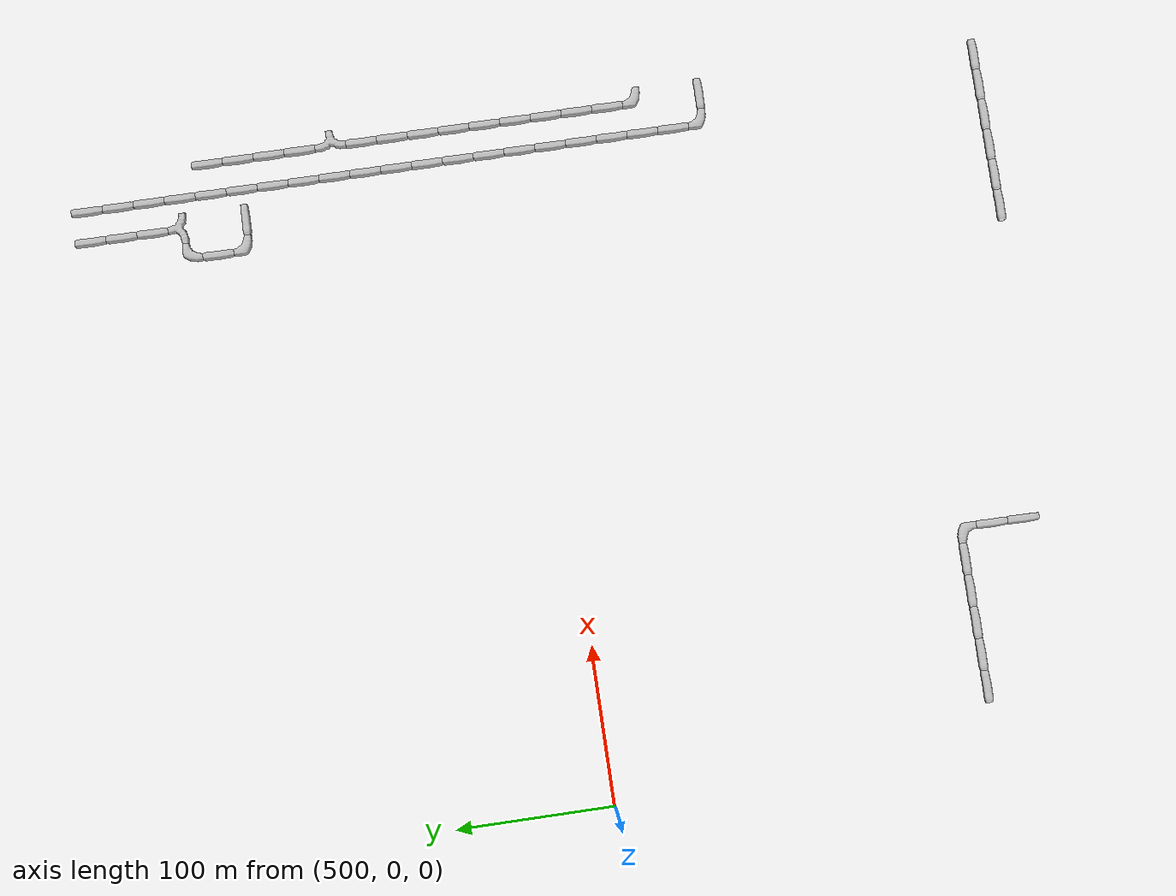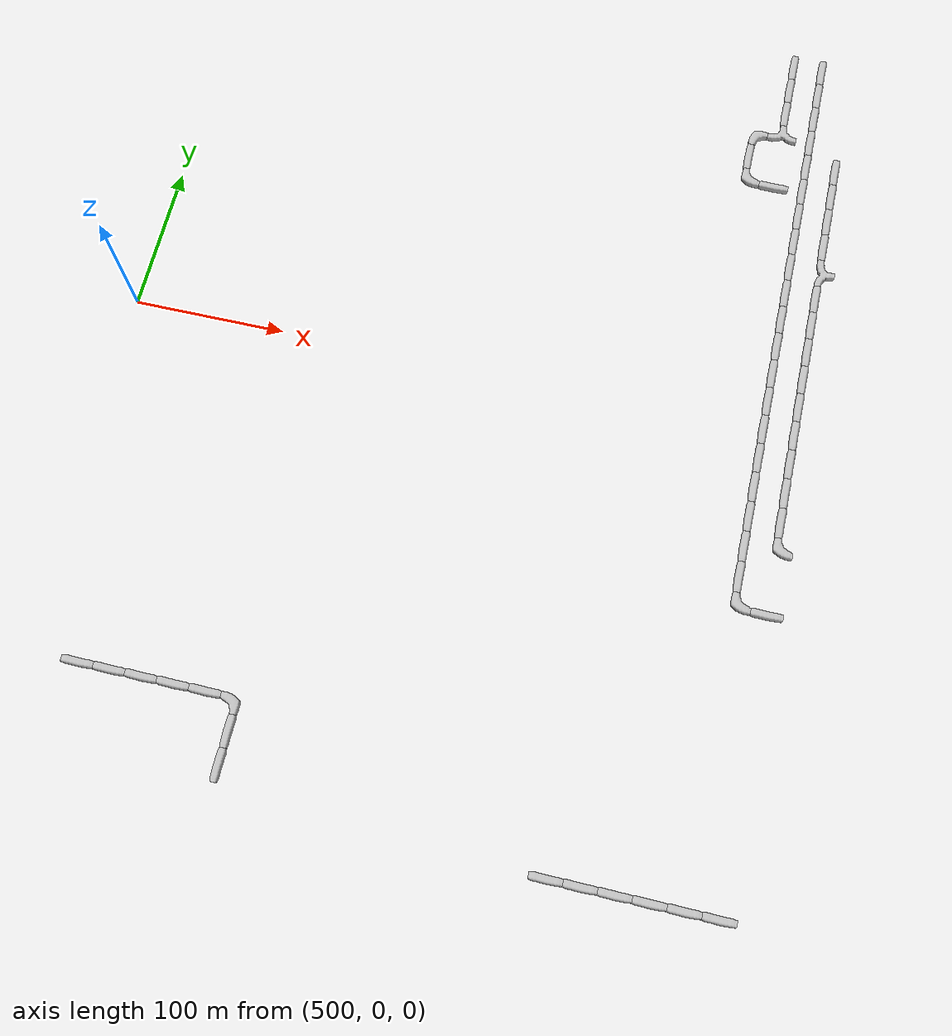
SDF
<sdf version="1.6">
 <world name="cave_32000_2">
  <include>
   <static>true</static>
   <name>cave_27_-12</name>
   <pose>540 -240 0 0 0 1.5707963267948966</pose>
   <uri>model://cave_straight_20m</uri>
  </include>
  <include>
   <static>true</static>
   <name>cave_28_-12</name>
   <pose>560 -240 0 0 0 1.5707963267948966</pose>
   <uri>model://cave_straight_20m</uri>
  </include>
  <include>
   <static>true</static>
   <name>cave_29_-12</name>
   <pose>580 -240 0 0 0 1.5707963267948966</pose>
   <uri>model://cave_straight_20m</uri>
  </include>
  <include>
   <static>true</static>
   <name>cave_30_-12</name>
   <pose>600 -240 0 0 0 1.5707963267948966</pose>
   <uri>model://cave_straight_20m</uri>
  </include>
  <include>
   <static>true</static>
   <name>cave_31_-12</name>
   <pose>620 -240 0 0 0 1.5707963267948966</pose>
   <uri>model://cave_straight_20m</uri>
  </include>
  <include>
   <static>true</static>
   <name>cave_32_-12</name>
   <pose>640 -240 0 0 0 3.141592653589793</pose>
   <uri>model://cave_L_20m</uri>
  </include>
  <include>
   <static>true</static>
   <name>cave_32_-13</name>
   <pose>640 -260 0 0 0 0.0</pose>
   <uri>model://cave_straight_20m</uri>
  </include>
  <include>
   <static>true</static>
   <name>cave_32_-14</name>
   <pose>640 -280 0 0 0 0.0</pose>
   <uri>model://cave_straight_20m</uri>
  </include>
  <include>
   <static>true</static>
   <name>cave_47_-15</name>
   <pose>940 -300 0 0 0 1.5707963267948966</pose>
   <uri>model://cave_straight_20m</uri>
  </include>
  <include>
   <static>true</static>
   <name>cave_46_-15</name>
   <pose>920 -300 0 0 0 1.5707963267948966</pose>
   <uri>model://cave_straight_20m</uri>
  </include>
  <include>
   <static>true</static>
   <name>cave_45_-15</name>
   <pose>900 -300 0 0 0 1.5707963267948966</pose>
   <uri>model://cave_straight_20m</uri>
  </include>
  <include>
   <static>true</static>
   <name>cave_44_-15</name>
   <pose>880 -300 0 0 0 1.5707963267948966</pose>
   <uri>model://cave_straight_20m</uri>
  </include>
  <include>
   <static>true</static>
   <name>cave_43_-15</name>
   <pose>860 -300 0 0 0 1.5707963267948966</pose>
   <uri>model://cave_straight_20m</uri>
  </include>
  <include>
   <static>true</static>
   <name>cave_42_-15</name>
   <pose>840 -300 0 0 0 1.5707963267948966</pose>
   <uri>model://cave_straight_20m</uri>
  </include>
  <include>
   <static>true</static>
   <name>cave_47_-6</name>
   <pose>940 -120 0 0 0 1.5707963267948966</pose>
   <uri>model://cave_straight_20m</uri>
  </include>
  <include>
   <static>true</static>
   <name>cave_46_-6</name>
   <pose>920 -120 0 0 0 0.0</pose>
   <uri>model://cave_L_20m</uri>
  </include>
  <include>
   <static>true</static>
   <name>cave_46_-5</name>
   <pose>920 -100 0 0 0 0.0</pose>
   <uri>model://cave_straight_20m</uri>
  </include>
  <include>
   <static>true</static>
   <name>cave_46_-4</name>
   <pose>920 -80 0 0 0 0.0</pose>
   <uri>model://cave_straight_20m</uri>
  </include>
  <include>
   <static>true</static>
   <name>cave_46_-3</name>
   <pose>920 -60 0 0 0 0.0</pose>
   <uri>model://cave_straight_20m</uri>
  </include>
  <include>
   <static>true</static>
   <name>cave_46_-2</name>
   <pose>920 -40 0 0 0 0.0</pose>
   <uri>model://cave_straight_20m</uri>
  </include>
  <include>
   <static>true</static>
   <name>cave_46_-1</name>
   <pose>920 -20 0 0 0 0.0</pose>
   <uri>model://cave_straight_20m</uri>
  </include>
  <include>
   <static>true</static>
   <name>cave_46_0</name>
   <pose>920 0 0 0 0 0.0</pose>
   <uri>model://cave_straight_20m</uri>
  </include>
  <include>
   <static>true</static>
   <name>cave_46_1</name>
   <pose>920 20 0 0 0 0.0</pose>
   <uri>model://cave_straight_20m</uri>
  </include>
  <include>
   <static>true</static>
   <name>cave_46_2</name>
   <pose>920 40 0 0 0 0.0</pose>
   <uri>model://cave_straight_20m</uri>
  </include>
  <include>
   <static>true</static>
   <name>cave_46_3</name>
   <pose>920 60 0 0 0 0.0</pose>
   <uri>model://cave_straight_20m</uri>
  </include>
  <include>
   <static>true</static>
   <name>cave_46_4</name>
   <pose>920 80 0 0 0 0.0</pose>
   <uri>model://cave_straight_20m</uri>
  </include>
  <include>
   <static>true</static>
   <name>cave_46_5</name>
   <pose>920 100 0 0 0 0.0</pose>
   <uri>model://cave_straight_20m</uri>
  </include>
  <include>
   <static>true</static>
   <name>cave_46_6</name>
   <pose>920 120 0 0 0 0.0</pose>
   <uri>model://cave_straight_20m</uri>
  </include>
  <include>
   <static>true</static>
   <name>cave_46_7</name>
   <pose>920 140 0 0 0 0.0</pose>
   <uri>model://cave_straight_20m</uri>
  </include>
  <include>
   <static>true</static>
   <name>cave_46_8</name>
   <pose>920 160 0 0 0 0.0</pose>
   <uri>model://cave_straight_20m</uri>
  </include>
  <include>
   <static>true</static>
   <name>cave_46_9</name>
   <pose>920 180 0 0 0 0.0</pose>
   <uri>model://cave_straight_20m</uri>
  </include>
  <include>
   <static>true</static>
   <name>cave_46_10</name>
   <pose>920 200 0 0 0 0.0</pose>
   <uri>model://cave_straight_20m</uri>
  </include>
  <include>
   <static>true</static>
   <name>cave_46_11</name>
   <pose>920 220 0 0 0 0.0</pose>
   <uri>model://cave_straight_20m</uri>
  </include>
  <include>
   <static>true</static>
   <name>cave_46_12</name>
   <pose>920 240 0 0 0 0.0</pose>
   <uri>model://cave_straight_20m</uri>
  </include>
  <include>
   <static>true</static>
   <name>cave_46_13</name>
   <pose>920 260 0 0 0 0.0</pose>
   <uri>model://cave_straight_20m</uri>
  </include>
  <include>
   <static>true</static>
   <name>cave_46_14</name>
   <pose>920 280 0 0 0 0.0</pose>
   <uri>model://cave_straight_20m</uri>
  </include>
  <include>
   <static>true</static>
   <name>cave_45_14</name>
   <pose>900 280 0 0 0 0.0</pose>
   <uri>model://cave_straight_20m</uri>
  </include>
  <include>
   <static>true</static>
   <name>cave_45_13</name>
   <pose>900 260 0 0 0 0.0</pose>
   <uri>model://cave_straight_20m</uri>
  </include>
  <include>
   <static>true</static>
   <name>cave_45_12</name>
   <pose>900 240 0 0 0 0.0</pose>
   <uri>model://cave_straight_20m</uri>
  </include>
  <include>
   <static>true</static>
   <name>cave_45_11</name>
   <pose>900 220 0 0 0 0.0</pose>
   <uri>model://cave_3way_20m</uri>
  </include>
  <include>
   <static>true</static>
   <name>cave_44_11</name>
   <pose>880 220 0 0 0 -1.5707963267948966</pose>
   <uri>model://cave_L_20m</uri>
  </include>
  <include>
   <static>true</static>
   <name>cave_44_10</name>
   <pose>880 200 0 0 0 0.0</pose>
   <uri>model://cave_straight_20m</uri>
  </include>
  <include>
   <static>true</static>
   <name>cave_44_9</name>
   <pose>880 180 0 0 0 0.0</pose>
   <uri>model://cave_L_20m</uri>
  </include>
  <include>
   <static>true</static>
   <name>cave_45_9</name>
   <pose>900 180 0 0 0 1.5707963267948966</pose>
   <uri>model://cave_straight_20m</uri>
  </include>
  <include>
   <static>true</static>
   <name>cave_47_-4</name>
   <pose>940 -80 0 0 0 0.0</pose>
   <uri>model://cave_L_20m</uri>
  </include>
  <include>
   <static>true</static>
   <name>cave_47_-3</name>
   <pose>940 -60 0 0 0 0.0</pose>
   <uri>model://cave_straight_20m</uri>
  </include>
  <include>
   <static>true</static>
   <name>cave_47_-2</name>
   <pose>940 -40 0 0 0 0.0</pose>
   <uri>model://cave_straight_20m</uri>
  </include>
  <include>
   <static>true</static>
   <name>cave_47_-1</name>
   <pose>940 -20 0 0 0 0.0</pose>
   <uri>model://cave_straight_20m</uri>
  </include>
  <include>
   <static>true</static>
   <name>cave_47_0</name>
   <pose>940 0 0 0 0 0.0</pose>
   <uri>model://cave_straight_20m</uri>
  </include>
  <include>
   <static>true</static>
   <name>cave_47_1</name>
   <pose>940 20 0 0 0 0.0</pose>
   <uri>model://cave_straight_20m</uri>
  </include>
  <include>
   <static>true</static>
   <name>cave_47_2</name>
   <pose>940 40 0 0 0 0.0</pose>
   <uri>model://cave_straight_20m</uri>
  </include>
  <include>
   <static>true</static>
   <name>cave_47_3</name>
   <pose>940 60 0 0 0 0.0</pose>
   <uri>model://cave_straight_20m</uri>
  </include>
  <include>
   <static>true</static>
   <name>cave_47_4</name>
   <pose>940 80 0 0 0 0.0</pose>
   <uri>model://cave_straight_20m</uri>
  </include>
  <include>
   <static>true</static>
   <name>cave_47_5</name>
   <pose>940 100 0 0 0 0.0</pose>
   <uri>model://cave_straight_20m</uri>
  </include>
  <include>
   <static>true</static>
   <name>cave_47_6</name>
   <pose>940 120 0 0 0 -1.5707963267948966</pose>
   <uri>model://cave_3way_20m</uri>
  </include>
  <include>
   <static>true</static>
   <name>cave_47_7</name>
   <pose>940 140 0 0 0 0.0</pose>
   <uri>model://cave_straight_20m</uri>
  </include>
  <include>
   <static>true</static>
   <name>cave_47_8</name>
   <pose>940 160 0 0 0 0.0</pose>
   <uri>model://cave_straight_20m</uri>
  </include>
  <include>
   <static>true</static>
   <name>cave_47_9</name>
   <pose>940 180 0 0 0 0.0</pose>
   <uri>model://cave_straight_20m</uri>
  </include>
  <include>
   <static>true</static>
   <name>cave_47_10</name>
   <pose>940 200 0 0 0 0.0</pose>
   <uri>model://cave_straight_20m</uri>
  </include>
 </world>
</sdf>
